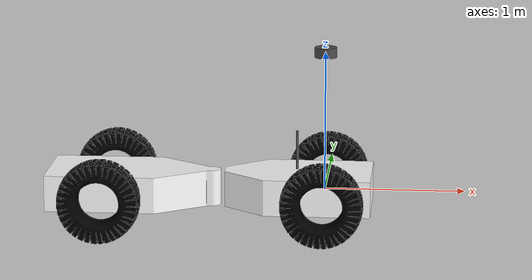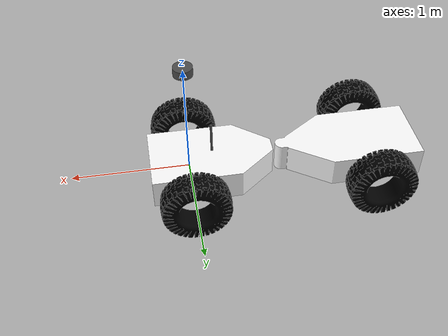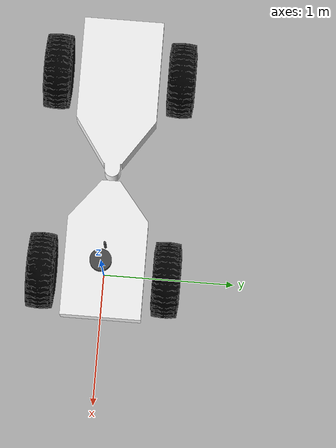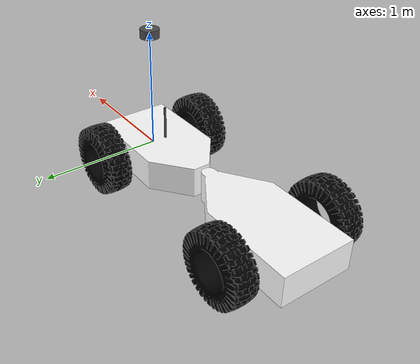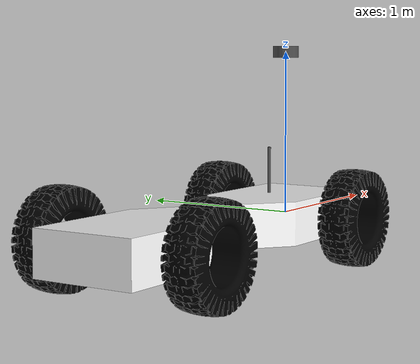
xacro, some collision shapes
<?xml version="1.0" ?>
<robot name="wagon" xmlns:xacro="http://ros.org/wiki/xacro">
  <xacro:include filename="$(find wagon_description)/urdf/common_properties.xacro"/>
  <xacro:property name="height" value="0.294" />
  <xacro:property name="hydraulic_offset" value="0.085" />
  <xacro:property name="rear_link_offset" value="-0.8716" />
  <xacro:property name="base_link_offset" value="0.6948" />

  <link name="base_link">
    <visual>
      <origin xyz="0 0 0" rpy="0 0 1.57"/>
      <geometry>
        <mesh filename="package://wagon_description/meshes/bases/Simplified_Front_Centered.stl" scale="0.001 0.001 0.001"/>
      </geometry>
      <material name="white"/>
    </visual>

    <collision>
      <origin xyz="-${base_link_offset-(1.055/2)+0.02} 0 0" rpy="0 0 0"/>
      <geometry>
        <box size="1.055 0.620 0.260"/>
      </geometry>
    </collision>

    <inertial>
      <origin xyz="-0.142 0 0" rpy="0 ${pi/2} 0" />
      <mass value="185.5" />
      <inertia ixx="6.189"
               ixy="0" iyy="17.997"
               ixz="-0.009" iyz="0" izz="21.229" />
    </inertial>
  </link>

  <joint name="connection_joint" type="revolute">

    <parent link="base_link"/>
    <child link="connection_link"/>
    <origin xyz="${rear_link_offset + hydraulic_offset} 0 0" rpy="0 0 0"/>
    <axis xyz='1 0 0'/>
    <limit effort="1000.0" lower="-0.350" upper="0.350" velocity="0.5"/>

  </joint>

  <link name="connection_link">
    </link>

  <joint name="hydraulic_joint" type="revolute">
    <axis xyz="0 0 -1"/>
    <limit effort="1000.0" lower="-0.80" upper="0.80" velocity="0.5"/>
    <origin rpy="0 0 0" xyz="0.0 0.0 0"/>
    <parent link="connection_link"/>
    <child link="hydraulic_link"/>
  </joint>

  <link name="hydraulic_link">
    </link>

  <joint name="rear_joint" type="fixed">
    <parent link="hydraulic_link"/>
    <child link="rear_link"/>
    <origin xyz="${-0.8716+hydraulic_offset} 0 0" rpy="0 0 0"/>
      <axis xyz='1 1 0'/>

  </joint>

  <link name="rear_link">
    <visual>
        <geometry>
        <mesh filename="package://wagon_description/meshes/bases/Simplified_Back_Centered.stl" scale="0.001 0.001 0.001"/>
        </geometry>
        <material name="white"/>
        <origin xyz="0 0 0" rpy="0 0 ${pi/2}"/>

    </visual>
<!-- ${-0.8716+hydraulic_offset-(1.180/2)+0.02} -->
<!-- ${(1.180/2) + 0.8716+hydraulic_offset+0.02-1.180} -->
    <collision>
        <origin xyz="${hydraulic_offset} 0 0" rpy="0 0 0"/>
        <geometry>
          <box size="${1.02} 0.620 0.260"/>
        </geometry>
    </collision>

    <inertial>
        <origin xyz="${0.142} 0 0" rpy="0 0 0" />
        <mass value="190.5" />
      <inertia ixx="6.189"
               ixy="0" iyy="17.997"
               ixz="-0.009" iyz="0" izz="21.229" />
    </inertial>
  </link>

  <joint name="wheel_front_right_joint" type="continuous">
    <parent link="base_link"/>
    <child link="wheel_front_right_link"/>
    <origin xyz="0 -0.4815 0" rpy="0 0 0"/>
    <axis xyz="0 1 0"/>
  </joint>

  <link name="wheel_front_right_link">
    <visual>
      <origin xyz="0 0 0" rpy="1.57 0 0"/>
      <geometry>
        <mesh filename="package://wagon_description/meshes/wheels/Wheel.stl" scale="0.001 0.001 0.001"/>
      </geometry>
      <material name="black"/>
    </visual>

    <collision>
      <origin xyz="0 0 0" rpy="1.57 0 0"/>
      <geometry>
        <cylinder length="0.215" radius="0.292"/>
      </geometry>
    </collision>

    <inertial>
      <origin xyz="0 0 0" rpy="1.57 0 0" />
      <mass value="40.5" />
      <inertia ixx="1.05"
               ixy="1.0783e-10" iyy="1.83"
               ixz="-0.023" iyz="-0.898e-11" izz="1.05" />
    </inertial>
  </link>

    <joint name="wheel_front_left_joint" type="continuous">
    <parent link="base_link"/>
    <child link="wheel_front_left_link"/>
    <origin xyz="0 0.4815 0" rpy="0 0 0"/>
    <axis xyz="0 1 0"/>
  </joint>

  <link name="wheel_front_left_link">
    <visual>
      <origin xyz="0 0 0" rpy="1.57 0 0"/>
      <geometry>
        <mesh filename="package://wagon_description/meshes/wheels/Wheel.stl" scale="0.001 0.001 0.001"/>
      </geometry>
      <material name="black"/>
    </visual>

    <collision>
      <origin xyz="0 0 0" rpy="1.57 0 0"/>
      <geometry>
        <cylinder length="0.215" radius="0.294"/>
      </geometry>
    </collision>

    <inertial>
      <origin xyz="0 0 0" rpy="1.57 0 0" />
      <mass value="40.5" />
      <inertia ixx="1.05"
               ixy="1.0783e-10" iyy="1.83"
               ixz="-0.023" iyz="-0.898e-11" izz="1.05" />
    </inertial>
  </link>

  <joint name="wheel_rear_right_joint" type="continuous">
    <parent link="rear_link"/>
    <child link="wheel_rear_right_link"/>
    <origin xyz="0 -0.4815 0" rpy="0 0 0"/>
    <axis xyz="0 1 0"/>
  </joint>

  <link name="wheel_rear_right_link">
    <visual>
      <origin xyz="0 0 0" rpy="1.57 0 0"/>
      <geometry>
        <mesh filename="package://wagon_description/meshes/wheels/Wheel.stl" scale="0.001 0.001 0.001"/>
      </geometry>
      <material name="black"/>
    </visual>

    <collision>
      <origin xyz="0 0 0" rpy="1.57 0 0"/>
      <geometry>
        <cylinder length="0.215" radius="0.294"/>
      </geometry>
    </collision>

    <inertial>
      <origin xyz="0 0 0" rpy="0 0 0" />
      <mass value="40.5" />
      <inertia ixx="1.05"
               ixy="1.0783e-10" iyy="1.83"
               ixz="-0.023" iyz="-0.898e-11" izz="1.05" />
    </inertial>
  </link>

    <joint name="wheel_rear_left_joint" type="continuous">
    <parent link="rear_link"/>
    <child link="wheel_rear_left_link"/>
    <origin xyz="0 0.4815 0" rpy="0 0 0"/>
    <axis xyz="0 1 0"/>
  </joint>

  <link name="wheel_rear_left_link">
    <visual>
      <origin xyz="0 0 0" rpy="1.57 0 0"/>
      <geometry>
        <mesh filename="package://wagon_description/meshes/wheels/Wheel.stl" scale="0.001 0.001 0.001"/>
      </geometry>
      <material name="black"/>
    </visual>

    <collision>
      <origin xyz="0 0 0" rpy="1.57 0 0"/>
      <geometry>
        <cylinder length="0.215" radius="0.294"/>
      </geometry>
    </collision>

    <inertial>
      <origin xyz="0 0 0" rpy="1.57 0 0" />
      <mass value="40.5" />
      <inertia ixx="1.05"
               ixy="1.0783e-10" iyy="1.83"
               ixz="-0.023" iyz="-0.898e-11" izz="1.05" />
    </inertial>
  </link>

  <joint name="rear_imu_joint" type="fixed">
    <parent link="rear_link"/>
    <child link="rear_imu_link"/>
    <origin xyz="-0.032 0 0.068" rpy="0 0 0"/>
  </joint>

  <link name="rear_imu_link"/>

  <joint name="base_scan_imu_joint" type="fixed">
    <parent link="base_scan"/>
    <child link="base_scan_imu_link"/>
    <origin xyz="0.0 0.0 0.0" rpy="0 0 0"/>
  </joint>

  <link name="base_scan_imu_link"/>

  <joint name="scan_joint" type="fixed">
    <parent link="base_link"/>
    <child link="base_scan"/>
    <origin xyz="0 0 1.0" rpy="0 0 0"/>
  </joint>

  <link name="base_scan">
    <visual>
      <origin xyz="0 0 -0.036" rpy="${pi/2} 0 0"/>
      <geometry>
        <mesh filename="package://wagon_description/meshes/sensors/ouster_OS1.dae" scale="1 1 1"/>
      </geometry>
      <material name="dark"/>
    </visual>

    <collision>
      <origin xyz="0 0 0" rpy="0 0 0"/>
      <geometry>
        <cylinder length="0.072" radius="0.079"/>
      </geometry>
    </collision>

    <inertial>
      <mass value="0.314" />
      <origin xyz="0 0 0" />
      <inertia ixx="0.001" ixy="0.0" ixz="0.0" iyy="0.001" iyz="0.0" izz="0.001" />
    </inertial>
  </link>

  <xacro:property name="rtk_pole_height" value="0.28" />

  <joint name="rtk_joint" type="fixed">
    <parent link="base_link"/>
    <child link="rtk_pole"/>
    <origin xyz="-0.200 0 ${0.142+rtk_pole_height}" rpy="0 0 0"/>
  </joint>

  <link name="rtk_pole">
    <visual>
      <origin xyz="0 0 -${rtk_pole_height/2}" rpy="0 0 0"/>
      <geometry>
        <cylinder length="${rtk_pole_height}" radius="0.01"/>
      </geometry>
      <material name="dark"/>
    </visual>

    <collision>
      <origin xyz="0 0 -${rtk_pole_height/2}" rpy="0 0 0"/>
      <geometry>
        <cylinder length="${rtk_pole_height}" radius="0.01"/>
      </geometry>
    </collision>

    <inertial>
      <mass value="0.314" />
      <origin xyz="0 0 0" />
      <inertia ixx="0.001" ixy="0.0" ixz="0.0" iyy="0.001" iyz="0.0" izz="0.001" />
    </inertial>
  </link>

</robot>

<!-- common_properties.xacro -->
<robot name="xacro_properties" xmlns:xacro="http://ros.org/wiki/xacro">

  <!-- Init colour -->
  <material name="black">
      <color rgba="0.0 0.0 0.0 1.0"/>
  </material>

  <material name="dark">
    <color rgba="0.3 0.3 0.3 1.0"/>
  </material>

  <material name="light_black">
    <color rgba="0.4 0.4 0.4 1.0"/>
  </material>

  <material name="blue">
    <color rgba="0.0 0.0 0.8 1.0"/>
  </material>

  <material name="green">
    <color rgba="0.0 0.8 0.0 1.0"/>
  </material>

  <material name="grey">
    <color rgba="0.5 0.5 0.5 1.0"/>
  </material>

  <material name="orange">
    <color rgba="${255/255} ${108/255} ${10/255} 1.0"/>
  </material>

  <material name="brown">
    <color rgba="${222/255} ${207/255} ${195/255} 1.0"/>
  </material>

  <material name="red">
    <color rgba="0.8 0.0 0.0 1.0"/>
  </material>

  <material name="white">
    <color rgba="1.0 1.0 1.0 1.0"/>
  </material>

  <material name="acrylic">
    <color rgba="0.9 0.9 1.0 0.6"/>
  </material>

</robot>
